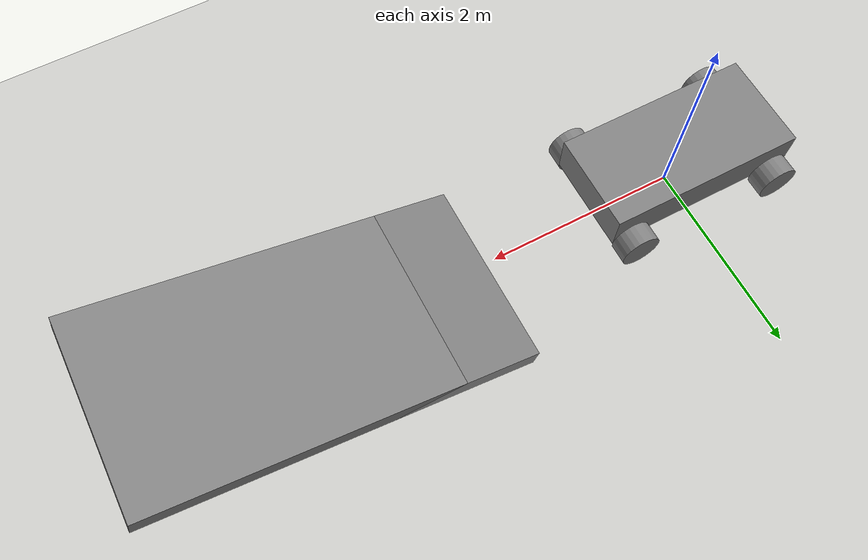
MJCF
<mujoco model="simple_car">

  <worldbody>
    <light pos="0 0 5" dir="0 0 -1"/>
    <geom name="ground" type="plane" size="30 30 0.1"/>
    <geom name="ramp" type="box" size="2 1 0.1" pos="4 0 0.2" euler="0 -15 0"/>

    <body name="car" pos="0 0 0.5">
      <freejoint/>
      <geom name="car_body" type="box" size="1 0.5 0.2"/>

      <body name="fl_wheel" pos="0.8 0.6 -0.2">
        <joint name="fl_wheel_joint" type="hinge" axis="0 1 0"/>
        <geom type="cylinder" size="0.2 0.1" euler="90 0 0"/>
      </body>

      <body name="fr_wheel" pos="0.8 -0.6 -0.2">
        <joint name="fr_wheel_joint" type="hinge" axis="0 1 0"/>
        <geom type="cylinder" size="0.2 0.1" euler="90 0 0"/>
      </body>

      <body name="rl_wheel" pos="-0.8 0.6 -0.2">
        <joint name="rl_wheel_joint" type="hinge" axis="0 1 0"/>
        <geom type="cylinder" size="0.2 0.1" euler="90 0 0"/>
      </body>

      <body name="rr_wheel" pos="-0.8 -0.6 -0.2">
        <joint name="rr_wheel_joint" type="hinge" axis="0 1 0"/>
        <geom type="cylinder" size="0.2 0.1" euler="90 0 0"/>
      </body>

    </body>
  </worldbody>

</mujoco>
